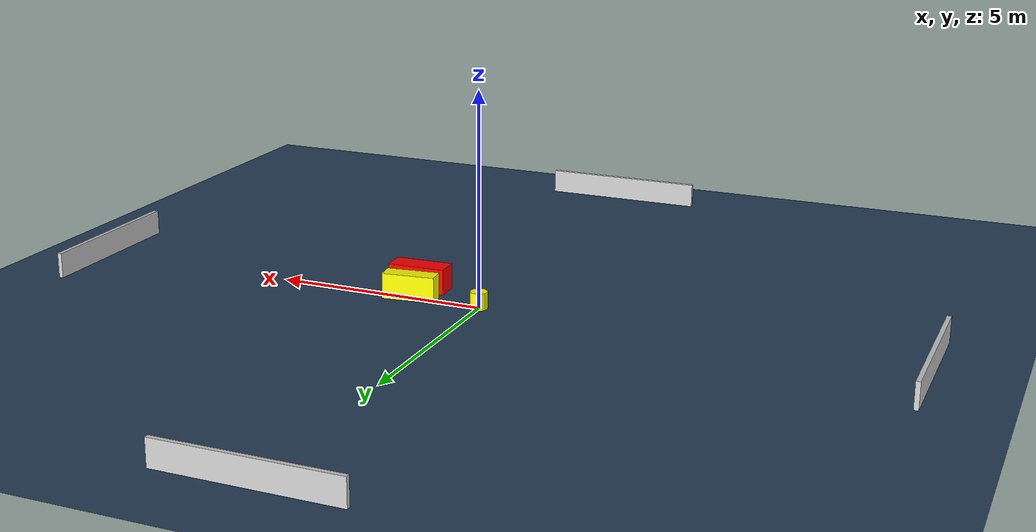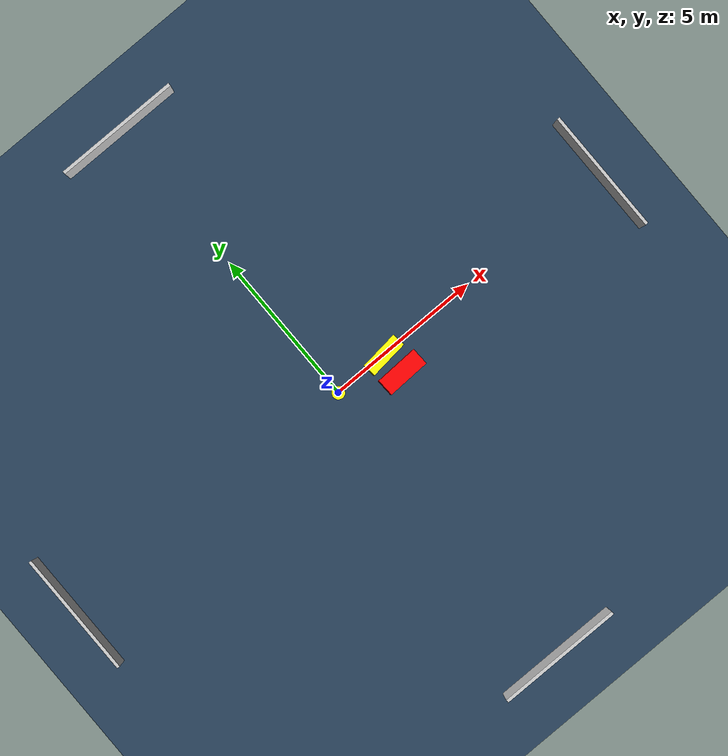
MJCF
<?xml version="1.0" ?>
<mujoco model="generated_environment">
  <option timestep="0.01" integrator="RK4" cone="elliptic"/>
  <default>
    <geom density="1"/>
  </default>
  <asset>
    <texture builtin="gradient" height="3072" name="skybox" rgb1="0.3 0.5 0.7" rgb2="0 0 0" type="skybox" width="512"/>
    <texture builtin="checker" height="300" name="groundplane" rgb1="0.2 0.3 0.4" rgb2="0.1 0.2 0.3" type="2d" width="300"/>
    <material name="groundplane" reflectance="0.2" texrepeat="5 5" texture="groundplane"/>
  </asset>
  <worldbody>
    <light dir="0 0 -1" directional="true" pos="0 0 1.5"/>
    <geom condim="3" friction="0.5 0.005 0.001" material="groundplane" name="floor" pos="0 0 0" size="0 0 0.05" type="plane"/>
    <body name="walls">
      <geom name="wall_1" condim="4" pos="-10.0 0.0 0.3" rgba="0.800000011920929 0.800000011920929 0.800000011920929 1.0" size="0.05 2.0 0.3" type="box"/>
      <geom name="wall_2" condim="4" pos="10.0 0.0 0.3" rgba="0.800000011920929 0.800000011920929 0.800000011920929 1.0" size="0.05 2.0 0.3" type="box"/>
      <geom name="wall_3" condim="4" pos="0.0 -10.0 0.3" rgba="0.800000011920929 0.800000011920929 0.800000011920929 1.0" size="2.0 0.05 0.3" type="box"/>
      <geom name="wall_4" condim="4" pos="0.0 10.0 0.3" rgba="0.800000011920929 0.800000011920929 0.800000011920929 1.0" size="2.0 0.05 0.3" type="box"/>
    </body>
    <body name="robot">
      <joint name="joint_x" type="slide" pos="0 0 0" axis="1 0 0"/>
      <joint name="joint_y" type="slide" pos="0 0 0" axis="0 1 0"/>
      <geom name="robot" type="cylinder" pos="0.0 0.0 0.2" size="0.2 0.2 0.0" mass="5.0" friction="1.0 0.005 0.0001" condim="4" rgba="1.0 1.0 0.0 1.0"/>
    </body>
    <body name="obstacle_1_movable">
      <geom name="obstacle_1_movable" condim="4" pos="1.7181775961679 -0.011718143032654426 0.3" euler="0 0 276.4161189273671" friction="0.0 0.005 0.001" rgba="1.0 1.0 0.0 1.0" size="0.211251929549435 0.6196316906430746 0.3" type="box" mass="0.1"/>
      <joint type="free"/>
    </body>
    <body name="obstacle_2_static">
      <geom name="obstacle_2_static" condim="4" pos="1.8148030790224348 -0.7373198786165918 0.3" euler="0 0 2.1466252880583614" friction="0.0 0.005 0.001" rgba="1.0 0.0 0.0 1.0" size="0.6844286423056851 0.27602818105217536 0.3" type="box"/>
    </body>
  </worldbody>
  <actuator>
    <motor name="actuator_x" joint="joint_x" gear="1" ctrlrange="-1 1"/>
    <motor name="actuator_y" joint="joint_y" gear="1" ctrlrange="-1 1"/>
  </actuator>
</mujoco>
